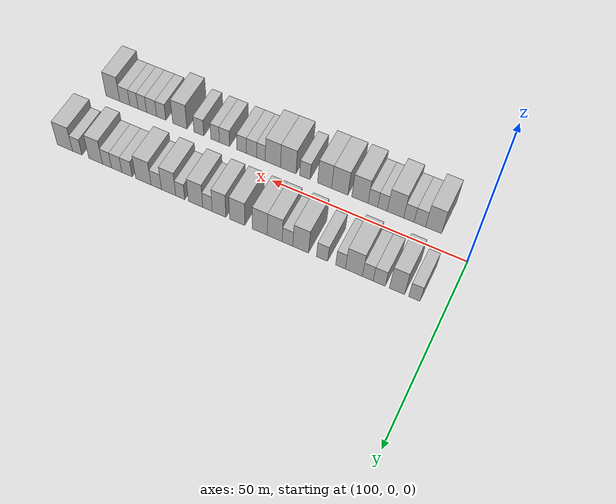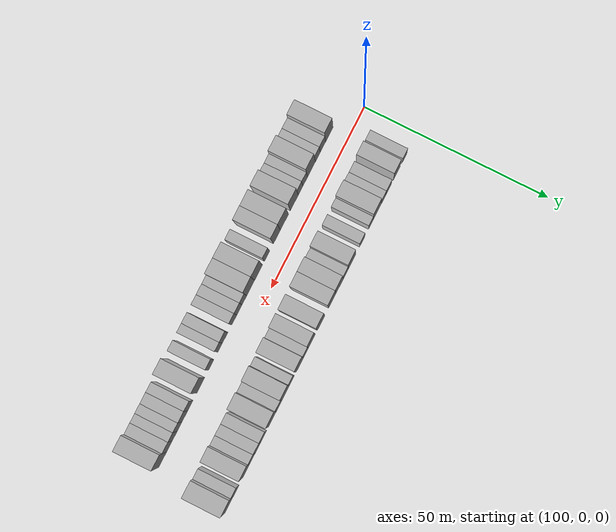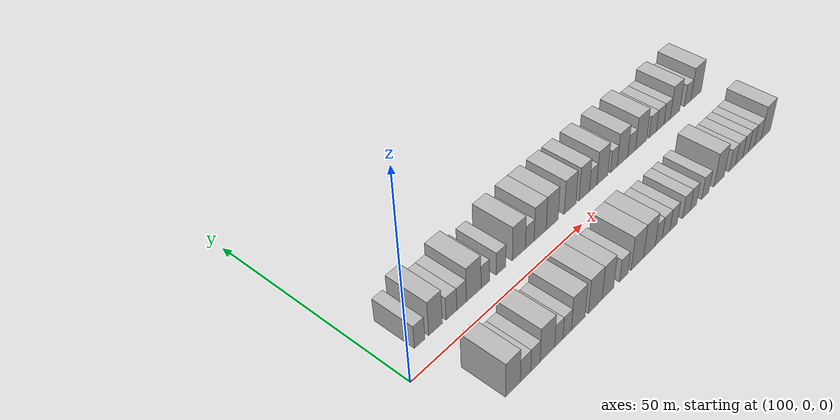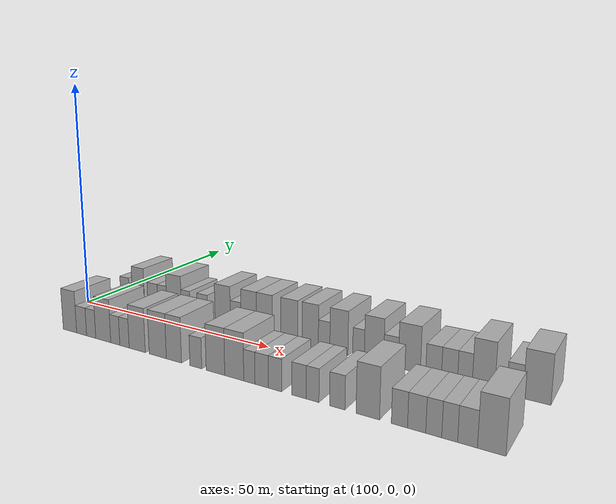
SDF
<sdf version="1.6">
 <world name="default">
  <model name="building_26">
   <static>1</static>
   <pose>107.2216 9.5000 0 0.000000 0.000000 1.570796</pose>
   <link name="link">
    <pose>0 0 3.00 0 0 0</pose>
    <collision name="collision"><geometry><box><size>10.0000 2.7436 6.0000</size></box></geometry></collision>
    <visual name="visual">
     <cast_shadows>0</cast_shadows>
     <geometry><box><size>10.0000 2.7436 6.0000</size></box></geometry>
     <material>
      <script>
       <uri>model://HANNAS_wall/materials/scripts</uri>
       <uri>model://HANNAS_wall/materials/textures</uri>
       <name>vrc/HANNAS_wall</name>
      </script>
     </material>
    </visual>
   </link>
  </model>
  <model name="building_27">
   <static>1</static>
   <pose>111.4386 9.5000 0 0.000000 0.000000 1.570796</pose>
   <link name="link">
    <pose>0 0 4.50 0 0 0</pose>
    <collision name="collision"><geometry><box><size>10.0000 3.6904 9.0000</size></box></geometry></collision>
    <visual name="visual">
     <cast_shadows>0</cast_shadows>
     <geometry><box><size>10.0000 3.6904 9.0000</size></box></geometry>
     <material>
      <script>
       <uri>model://HANNAS_wall/materials/scripts</uri>
       <uri>model://HANNAS_wall/materials/textures</uri>
       <name>vrc/HANNAS_wall</name>
      </script>
     </material>
    </visual>
   </link>
  </model>
  <model name="building_28">
   <static>1</static>
   <pose>115.7671 9.5000 0 0.000000 0.000000 1.570796</pose>
   <link name="link">
    <pose>0 0 3.00 0 0 0</pose>
    <collision name="collision"><geometry><box><size>10.0000 2.9667 6.0000</size></box></geometry></collision>
    <visual name="visual">
     <cast_shadows>0</cast_shadows>
     <geometry><box><size>10.0000 2.9667 6.0000</size></box></geometry>
     <material>
      <script>
       <uri>model://HANNAS_wall/materials/scripts</uri>
       <uri>model://HANNAS_wall/materials/textures</uri>
       <name>vrc/HANNAS_wall</name>
      </script>
     </material>
    </visual>
   </link>
  </model>
  <model name="building_29">
   <static>1</static>
   <pose>118.5876 9.5000 0 0.000000 0.000000 1.570796</pose>
   <link name="link">
    <pose>0 0 3.00 0 0 0</pose>
    <collision name="collision"><geometry><box><size>10.0000 2.6743 6.0000</size></box></geometry></collision>
    <visual name="visual">
     <cast_shadows>0</cast_shadows>
     <geometry><box><size>10.0000 2.6743 6.0000</size></box></geometry>
     <material>
      <script>
       <uri>model://HANNAS_wall/materials/scripts</uri>
       <uri>model://HANNAS_wall/materials/textures</uri>
       <name>vrc/HANNAS_wall</name>
      </script>
     </material>
    </visual>
   </link>
  </model>
  <model name="building_30">
   <static>1</static>
   <pose>122.0365 9.5000 0 0.000000 0.000000 1.570796</pose>
   <link name="link">
    <pose>0 0 4.50 0 0 0</pose>
    <collision name="collision"><geometry><box><size>10.0000 4.2235 9.0000</size></box></geometry></collision>
    <visual name="visual">
     <cast_shadows>0</cast_shadows>
     <geometry><box><size>10.0000 4.2235 9.0000</size></box></geometry>
     <material>
      <script>
       <uri>model://HANNAS_wall/materials/scripts</uri>
       <uri>model://HANNAS_wall/materials/textures</uri>
       <name>vrc/HANNAS_wall</name>
      </script>
     </material>
    </visual>
   </link>
  </model>
  <model name="building_31">
   <static>1</static>
   <pose>125.3655 9.5000 0 0.000000 0.000000 1.570796</pose>
   <link name="link">
    <pose>0 0 3.00 0 0 0</pose>
    <collision name="collision"><geometry><box><size>10.0000 2.4346 6.0000</size></box></geometry></collision>
    <visual name="visual">
     <cast_shadows>0</cast_shadows>
     <geometry><box><size>10.0000 2.4346 6.0000</size></box></geometry>
     <material>
      <script>
       <uri>model://HANNAS_wall/materials/scripts</uri>
       <uri>model://HANNAS_wall/materials/textures</uri>
       <name>vrc/HANNAS_wall</name>
      </script>
     </material>
    </visual>
   </link>
  </model>
  <model name="building_32">
   <static>1</static>
   <pose>130.0093 9.5000 0 0.000000 0.000000 1.570796</pose>
   <link name="link">
    <pose>0 0 3.00 0 0 0</pose>
    <collision name="collision"><geometry><box><size>10.0000 2.8530 6.0000</size></box></geometry></collision>
    <visual name="visual">
     <cast_shadows>0</cast_shadows>
     <geometry><box><size>10.0000 2.8530 6.0000</size></box></geometry>
     <material>
      <script>
       <uri>model://HANNAS_wall/materials/scripts</uri>
       <uri>model://HANNAS_wall/materials/textures</uri>
       <name>vrc/HANNAS_wall</name>
      </script>
     </material>
    </visual>
   </link>
  </model>
  <model name="building_33">
   <static>1</static>
   <pose>135.4613 9.5000 0 0.000000 0.000000 1.570796</pose>
   <link name="link">
    <pose>0 0 4.50 0 0 0</pose>
    <collision name="collision"><geometry><box><size>10.0000 4.0511 9.0000</size></box></geometry></collision>
    <visual name="visual">
     <cast_shadows>0</cast_shadows>
     <geometry><box><size>10.0000 4.0511 9.0000</size></box></geometry>
     <material>
      <script>
       <uri>model://HANNAS_wall/materials/scripts</uri>
       <uri>model://HANNAS_wall/materials/textures</uri>
       <name>vrc/HANNAS_wall</name>
      </script>
     </material>
    </visual>
   </link>
  </model>
  <model name="building_34">
   <static>1</static>
   <pose>138.8595 9.5000 0 0.000000 0.000000 1.570796</pose>
   <link name="link">
    <pose>0 0 3.00 0 0 0</pose>
    <collision name="collision"><geometry><box><size>10.0000 2.7453 6.0000</size></box></geometry></collision>
    <visual name="visual">
     <cast_shadows>0</cast_shadows>
     <geometry><box><size>10.0000 2.7453 6.0000</size></box></geometry>
     <material>
      <script>
       <uri>model://HANNAS_wall/materials/scripts</uri>
       <uri>model://HANNAS_wall/materials/textures</uri>
       <name>vrc/HANNAS_wall</name>
      </script>
     </material>
    </visual>
   </link>
  </model>
  <model name="building_35">
   <static>1</static>
   <pose>142.1615 9.5000 0 0.000000 0.000000 1.570796</pose>
   <link name="link">
    <pose>0 0 4.50 0 0 0</pose>
    <collision name="collision"><geometry><box><size>10.0000 3.8588 9.0000</size></box></geometry></collision>
    <visual name="visual">
     <cast_shadows>0</cast_shadows>
     <geometry><box><size>10.0000 3.8588 9.0000</size></box></geometry>
     <material>
      <script>
       <uri>model://HANNAS_wall/materials/scripts</uri>
       <uri>model://HANNAS_wall/materials/textures</uri>
       <name>vrc/HANNAS_wall</name>
      </script>
     </material>
    </visual>
   </link>
  </model>
  <model name="building_36">
   <static>1</static>
   <pose>146.0505 9.5000 0 0.000000 0.000000 1.570796</pose>
   <link name="link">
    <pose>0 0 4.50 0 0 0</pose>
    <collision name="collision"><geometry><box><size>10.0000 3.9191 9.0000</size></box></geometry></collision>
    <visual name="visual">
     <cast_shadows>0</cast_shadows>
     <geometry><box><size>10.0000 3.9191 9.0000</size></box></geometry>
     <material>
      <script>
       <uri>model://HANNAS_wall/materials/scripts</uri>
       <uri>model://HANNAS_wall/materials/textures</uri>
       <name>vrc/HANNAS_wall</name>
      </script>
     </material>
    </visual>
   </link>
  </model>
  <model name="building_37">
   <static>1</static>
   <pose>152.0187 9.5000 0 0.000000 0.000000 1.570796</pose>
   <link name="link">
    <pose>0 0 4.50 0 0 0</pose>
    <collision name="collision"><geometry><box><size>10.0000 4.0175 9.0000</size></box></geometry></collision>
    <visual name="visual">
     <cast_shadows>0</cast_shadows>
     <geometry><box><size>10.0000 4.0175 9.0000</size></box></geometry>
     <material>
      <script>
       <uri>model://HANNAS_wall/materials/scripts</uri>
       <uri>model://HANNAS_wall/materials/textures</uri>
       <name>vrc/HANNAS_wall</name>
      </script>
     </material>
    </visual>
   </link>
  </model>
  <model name="building_38">
   <static>1</static>
   <pose>156.8604 9.5000 0 0.000000 0.000000 1.570796</pose>
   <link name="link">
    <pose>0 0 4.50 0 0 0</pose>
    <collision name="collision"><geometry><box><size>10.0000 3.6658 9.0000</size></box></geometry></collision>
    <visual name="visual">
     <cast_shadows>0</cast_shadows>
     <geometry><box><size>10.0000 3.6658 9.0000</size></box></geometry>
     <material>
      <script>
       <uri>model://HANNAS_wall/materials/scripts</uri>
       <uri>model://HANNAS_wall/materials/textures</uri>
       <name>vrc/HANNAS_wall</name>
      </script>
     </material>
    </visual>
   </link>
  </model>
  <model name="building_39">
   <static>1</static>
   <pose>159.9684 9.5000 0 0.000000 0.000000 1.570796</pose>
   <link name="link">
    <pose>0 0 3.00 0 0 0</pose>
    <collision name="collision"><geometry><box><size>10.0000 2.5502 6.0000</size></box></geometry></collision>
    <visual name="visual">
     <cast_shadows>0</cast_shadows>
     <geometry><box><size>10.0000 2.5502 6.0000</size></box></geometry>
     <material>
      <script>
       <uri>model://HANNAS_wall/materials/scripts</uri>
       <uri>model://HANNAS_wall/materials/textures</uri>
       <name>vrc/HANNAS_wall</name>
      </script>
     </material>
    </visual>
   </link>
  </model>
  <model name="building_40">
   <static>1</static>
   <pose>163.2046 9.5000 0 0.000000 0.000000 1.570796</pose>
   <link name="link">
    <pose>0 0 4.50 0 0 0</pose>
    <collision name="collision"><geometry><box><size>10.0000 3.9221 9.0000</size></box></geometry></collision>
    <visual name="visual">
     <cast_shadows>0</cast_shadows>
     <geometry><box><size>10.0000 3.9221 9.0000</size></box></geometry>
     <material>
      <script>
       <uri>model://HANNAS_wall/materials/scripts</uri>
       <uri>model://HANNAS_wall/materials/textures</uri>
       <name>vrc/HANNAS_wall</name>
      </script>
     </material>
    </visual>
   </link>
  </model>
  <model name="building_41">
   <static>1</static>
   <pose>167.3919 9.5000 0 0.000000 0.000000 1.570796</pose>
   <link name="link">
    <pose>0 0 3.00 0 0 0</pose>
    <collision name="collision"><geometry><box><size>10.0000 2.4524 6.0000</size></box></geometry></collision>
    <visual name="visual">
     <cast_shadows>0</cast_shadows>
     <geometry><box><size>10.0000 2.4524 6.0000</size></box></geometry>
     <material>
      <script>
       <uri>model://HANNAS_wall/materials/scripts</uri>
       <uri>model://HANNAS_wall/materials/textures</uri>
       <name>vrc/HANNAS_wall</name>
      </script>
     </material>
    </visual>
   </link>
  </model>
  <model name="building_42">
   <static>1</static>
   <pose>170.6040 9.5000 0 0.000000 0.000000 1.570796</pose>
   <link name="link">
    <pose>0 0 4.50 0 0 0</pose>
    <collision name="collision"><geometry><box><size>10.0000 3.9719 9.0000</size></box></geometry></collision>
    <visual name="visual">
     <cast_shadows>0</cast_shadows>
     <geometry><box><size>10.0000 3.9719 9.0000</size></box></geometry>
     <material>
      <script>
       <uri>model://HANNAS_wall/materials/scripts</uri>
       <uri>model://HANNAS_wall/materials/textures</uri>
       <name>vrc/HANNAS_wall</name>
      </script>
     </material>
    </visual>
   </link>
  </model>
  <model name="building_43">
   <static>1</static>
   <pose>174.0397 9.5000 0 0.000000 0.000000 1.570796</pose>
   <link name="link">
    <pose>0 0 3.00 0 0 0</pose>
    <collision name="collision"><geometry><box><size>10.0000 2.8995 6.0000</size></box></geometry></collision>
    <visual name="visual">
     <cast_shadows>0</cast_shadows>
     <geometry><box><size>10.0000 2.8995 6.0000</size></box></geometry>
     <material>
      <script>
       <uri>model://HANNAS_wall/materials/scripts</uri>
       <uri>model://HANNAS_wall/materials/textures</uri>
       <name>vrc/HANNAS_wall</name>
      </script>
     </material>
    </visual>
   </link>
  </model>
  <model name="building_44">
   <static>1</static>
   <pose>177.6387 9.5000 0 0.000000 0.000000 1.570796</pose>
   <link name="link">
    <pose>0 0 4.50 0 0 0</pose>
    <collision name="collision"><geometry><box><size>10.0000 4.2984 9.0000</size></box></geometry></collision>
    <visual name="visual">
     <cast_shadows>0</cast_shadows>
     <geometry><box><size>10.0000 4.2984 9.0000</size></box></geometry>
     <material>
      <script>
       <uri>model://HANNAS_wall/materials/scripts</uri>
       <uri>model://HANNAS_wall/materials/textures</uri>
       <name>vrc/HANNAS_wall</name>
      </script>
     </material>
    </visual>
   </link>
  </model>
  <model name="building_45">
   <static>1</static>
   <pose>182.2570 9.5000 0 0.000000 0.000000 1.570796</pose>
   <link name="link">
    <pose>0 0 3.00 0 0 0</pose>
    <collision name="collision"><geometry><box><size>10.0000 2.9382 6.0000</size></box></geometry></collision>
    <visual name="visual">
     <cast_shadows>0</cast_shadows>
     <geometry><box><size>10.0000 2.9382 6.0000</size></box></geometry>
     <material>
      <script>
       <uri>model://HANNAS_wall/materials/scripts</uri>
       <uri>model://HANNAS_wall/materials/textures</uri>
       <name>vrc/HANNAS_wall</name>
      </script>
     </material>
    </visual>
   </link>
  </model>
  <model name="building_46">
   <static>1</static>
   <pose>185.1921 9.5000 0 0.000000 0.000000 1.570796</pose>
   <link name="link">
    <pose>0 0 3.00 0 0 0</pose>
    <collision name="collision"><geometry><box><size>10.0000 2.9321 6.0000</size></box></geometry></collision>
    <visual name="visual">
     <cast_shadows>0</cast_shadows>
     <geometry><box><size>10.0000 2.9321 6.0000</size></box></geometry>
     <material>
      <script>
       <uri>model://HANNAS_wall/materials/scripts</uri>
       <uri>model://HANNAS_wall/materials/textures</uri>
       <name>vrc/HANNAS_wall</name>
      </script>
     </material>
    </visual>
   </link>
  </model>
  <model name="building_47">
   <static>1</static>
   <pose>187.9707 9.5000 0 0.000000 0.000000 1.570796</pose>
   <link name="link">
    <pose>0 0 3.00 0 0 0</pose>
    <collision name="collision"><geometry><box><size>10.0000 2.6251 6.0000</size></box></geometry></collision>
    <visual name="visual">
     <cast_shadows>0</cast_shadows>
     <geometry><box><size>10.0000 2.6251 6.0000</size></box></geometry>
     <material>
      <script>
       <uri>model://HANNAS_wall/materials/scripts</uri>
       <uri>model://HANNAS_wall/materials/textures</uri>
       <name>vrc/HANNAS_wall</name>
      </script>
     </material>
    </visual>
   </link>
  </model>
  <model name="building_48">
   <static>1</static>
   <pose>191.2544 9.5000 0 0.000000 0.000000 1.570796</pose>
   <link name="link">
    <pose>0 0 4.50 0 0 0</pose>
    <collision name="collision"><geometry><box><size>10.0000 3.9423 9.0000</size></box></geometry></collision>
    <visual name="visual">
     <cast_shadows>0</cast_shadows>
     <geometry><box><size>10.0000 3.9423 9.0000</size></box></geometry>
     <material>
      <script>
       <uri>model://HANNAS_wall/materials/scripts</uri>
       <uri>model://HANNAS_wall/materials/textures</uri>
       <name>vrc/HANNAS_wall</name>
      </script>
     </material>
    </visual>
   </link>
  </model>
  <model name="building_49">
   <static>1</static>
   <pose>196.5842 9.5000 0 0.000000 0.000000 1.570796</pose>
   <link name="link">
    <pose>0 0 3.00 0 0 0</pose>
    <collision name="collision"><geometry><box><size>10.0000 2.7172 6.0000</size></box></geometry></collision>
    <visual name="visual">
     <cast_shadows>0</cast_shadows>
     <geometry><box><size>10.0000 2.7172 6.0000</size></box></geometry>
     <material>
      <script>
       <uri>model://HANNAS_wall/materials/scripts</uri>
       <uri>model://HANNAS_wall/materials/textures</uri>
       <name>vrc/HANNAS_wall</name>
      </script>
     </material>
    </visual>
   </link>
  </model>
  <model name="building_50">
   <static>1</static>
   <pose>200.1872 9.5000 0 0.000000 0.000000 1.570796</pose>
   <link name="link">
    <pose>0 0 4.50 0 0 0</pose>
    <collision name="collision"><geometry><box><size>10.0000 4.4887 9.0000</size></box></geometry></collision>
    <visual name="visual">
     <cast_shadows>0</cast_shadows>
     <geometry><box><size>10.0000 4.4887 9.0000</size></box></geometry>
     <material>
      <script>
       <uri>model://HANNAS_wall/materials/scripts</uri>
       <uri>model://HANNAS_wall/materials/textures</uri>
       <name>vrc/HANNAS_wall</name>
      </script>
     </material>
    </visual>
   </link>
  </model>
  <model name="building_75">
   <static>1</static>
   <pose>110.0854 -9.5000 0 0.000000 0.000000 1.570796</pose>
   <link name="link">
    <pose>0 0 4.50 0 0 0</pose>
    <collision name="collision"><geometry><box><size>10.0000 4.0058 9.0000</size></box></geometry></collision>
    <visual name="visual">
     <cast_shadows>0</cast_shadows>
     <geometry><box><size>10.0000 4.0058 9.0000</size></box></geometry>
     <material>
      <script>
       <uri>model://HANNAS_wall/materials/scripts</uri>
       <uri>model://HANNAS_wall/materials/textures</uri>
       <name>vrc/HANNAS_wall</name>
      </script>
     </material>
    </visual>
   </link>
  </model>
  <model name="building_76">
   <static>1</static>
   <pose>113.5372 -9.5000 0 0.000000 0.000000 1.570796</pose>
   <link name="link">
    <pose>0 0 3.00 0 0 0</pose>
    <collision name="collision"><geometry><box><size>10.0000 2.8978 6.0000</size></box></geometry></collision>
    <visual name="visual">
     <cast_shadows>0</cast_shadows>
     <geometry><box><size>10.0000 2.8978 6.0000</size></box></geometry>
     <material>
      <script>
       <uri>model://HANNAS_wall/materials/scripts</uri>
       <uri>model://HANNAS_wall/materials/textures</uri>
       <name>vrc/HANNAS_wall</name>
      </script>
     </material>
    </visual>
   </link>
  </model>
  <model name="building_77">
   <static>1</static>
   <pose>116.3038 -9.5000 0 0.000000 0.000000 1.570796</pose>
   <link name="link">
    <pose>0 0 3.00 0 0 0</pose>
    <collision name="collision"><geometry><box><size>10.0000 2.6353 6.0000</size></box></geometry></collision>
    <visual name="visual">
     <cast_shadows>0</cast_shadows>
     <geometry><box><size>10.0000 2.6353 6.0000</size></box></geometry>
     <material>
      <script>
       <uri>model://HANNAS_wall/materials/scripts</uri>
       <uri>model://HANNAS_wall/materials/textures</uri>
       <name>vrc/HANNAS_wall</name>
      </script>
     </material>
    </visual>
   </link>
  </model>
  <model name="building_78">
   <static>1</static>
   <pose>119.7230 -9.5000 0 0.000000 0.000000 1.570796</pose>
   <link name="link">
    <pose>0 0 4.50 0 0 0</pose>
    <collision name="collision"><geometry><box><size>10.0000 4.2032 9.0000</size></box></geometry></collision>
    <visual name="visual">
     <cast_shadows>0</cast_shadows>
     <geometry><box><size>10.0000 4.2032 9.0000</size></box></geometry>
     <material>
      <script>
       <uri>model://HANNAS_wall/materials/scripts</uri>
       <uri>model://HANNAS_wall/materials/textures</uri>
       <name>vrc/HANNAS_wall</name>
      </script>
     </material>
    </visual>
   </link>
  </model>
  <model name="building_79">
   <static>1</static>
   <pose>123.0605 -9.5000 0 0.000000 0.000000 1.570796</pose>
   <link name="link">
    <pose>0 0 3.00 0 0 0</pose>
    <collision name="collision"><geometry><box><size>10.0000 2.4719 6.0000</size></box></geometry></collision>
    <visual name="visual">
     <cast_shadows>0</cast_shadows>
     <geometry><box><size>10.0000 2.4719 6.0000</size></box></geometry>
     <material>
      <script>
       <uri>model://HANNAS_wall/materials/scripts</uri>
       <uri>model://HANNAS_wall/materials/textures</uri>
       <name>vrc/HANNAS_wall</name>
      </script>
     </material>
    </visual>
   </link>
  </model>
  <model name="building_80">
   <static>1</static>
   <pose>125.5507 -9.5000 0 0.000000 0.000000 1.570796</pose>
   <link name="link">
    <pose>0 0 3.00 0 0 0</pose>
    <collision name="collision"><geometry><box><size>10.0000 2.5086 6.0000</size></box></geometry></collision>
    <visual name="visual">
     <cast_shadows>0</cast_shadows>
     <geometry><box><size>10.0000 2.5086 6.0000</size></box></geometry>
     <material>
      <script>
       <uri>model://HANNAS_wall/materials/scripts</uri>
       <uri>model://HANNAS_wall/materials/textures</uri>
       <name>vrc/HANNAS_wall</name>
      </script>
     </material>
    </visual>
   </link>
  </model>
  <model name="building_81">
   <static>1</static>
   <pose>128.9156 -9.5000 0 0.000000 0.000000 1.570796</pose>
   <link name="link">
    <pose>0 0 4.50 0 0 0</pose>
    <collision name="collision"><geometry><box><size>10.0000 4.2212 9.0000</size></box></geometry></collision>
    <visual name="visual">
     <cast_shadows>0</cast_shadows>
     <geometry><box><size>10.0000 4.2212 9.0000</size></box></geometry>
     <material>
      <script>
       <uri>model://HANNAS_wall/materials/scripts</uri>
       <uri>model://HANNAS_wall/materials/textures</uri>
       <name>vrc/HANNAS_wall</name>
      </script>
     </material>
    </visual>
   </link>
  </model>
  <model name="building_82">
   <static>1</static>
   <pose>134.1863 -9.5000 0 0.000000 0.000000 1.570796</pose>
   <link name="link">
    <pose>0 0 4.50 0 0 0</pose>
    <collision name="collision"><geometry><box><size>10.0000 4.3202 9.0000</size></box></geometry></collision>
    <visual name="visual">
     <cast_shadows>0</cast_shadows>
     <geometry><box><size>10.0000 4.3202 9.0000</size></box></geometry>
     <material>
      <script>
       <uri>model://HANNAS_wall/materials/scripts</uri>
       <uri>model://HANNAS_wall/materials/textures</uri>
       <name>vrc/HANNAS_wall</name>
      </script>
     </material>
    </visual>
   </link>
  </model>
  <model name="building_83">
   <static>1</static>
   <pose>138.2036 -9.5000 0 0.000000 0.000000 1.570796</pose>
   <link name="link">
    <pose>0 0 4.50 0 0 0</pose>
    <collision name="collision"><geometry><box><size>10.0000 3.7145 9.0000</size></box></geometry></collision>
    <visual name="visual">
     <cast_shadows>0</cast_shadows>
     <geometry><box><size>10.0000 3.7145 9.0000</size></box></geometry>
     <material>
      <script>
       <uri>model://HANNAS_wall/materials/scripts</uri>
       <uri>model://HANNAS_wall/materials/textures</uri>
       <name>vrc/HANNAS_wall</name>
      </script>
     </material>
    </visual>
   </link>
  </model>
  <model name="building_84">
   <static>1</static>
   <pose>143.4549 -9.5000 0 0.000000 0.000000 1.570796</pose>
   <link name="link">
    <pose>0 0 3.00 0 0 0</pose>
    <collision name="collision"><geometry><box><size>10.0000 2.7880 6.0000</size></box></geometry></collision>
    <visual name="visual">
     <cast_shadows>0</cast_shadows>
     <geometry><box><size>10.0000 2.7880 6.0000</size></box></geometry>
     <material>
      <script>
       <uri>model://HANNAS_wall/materials/scripts</uri>
       <uri>model://HANNAS_wall/materials/textures</uri>
       <name>vrc/HANNAS_wall</name>
      </script>
     </material>
    </visual>
   </link>
  </model>
  <model name="building_85">
   <static>1</static>
   <pose>147.9601 -9.5000 0 0.000000 0.000000 1.570796</pose>
   <link name="link">
    <pose>0 0 4.50 0 0 0</pose>
    <collision name="collision"><geometry><box><size>10.0000 4.2223 9.0000</size></box></geometry></collision>
    <visual name="visual">
     <cast_shadows>0</cast_shadows>
     <geometry><box><size>10.0000 4.2223 9.0000</size></box></geometry>
     <material>
      <script>
       <uri>model://HANNAS_wall/materials/scripts</uri>
       <uri>model://HANNAS_wall/materials/textures</uri>
       <name>vrc/HANNAS_wall</name>
      </script>
     </material>
    </visual>
   </link>
  </model>
  <model name="building_86">
   <static>1</static>
   <pose>152.1491 -9.5000 0 0.000000 0.000000 1.570796</pose>
   <link name="link">
    <pose>0 0 4.50 0 0 0</pose>
    <collision name="collision"><geometry><box><size>10.0000 4.1558 9.0000</size></box></geometry></collision>
    <visual name="visual">
     <cast_shadows>0</cast_shadows>
     <geometry><box><size>10.0000 4.1558 9.0000</size></box></geometry>
     <material>
      <script>
       <uri>model://HANNAS_wall/materials/scripts</uri>
       <uri>model://HANNAS_wall/materials/textures</uri>
       <name>vrc/HANNAS_wall</name>
      </script>
     </material>
    </visual>
   </link>
  </model>
  <model name="building_87">
   <static>1</static>
   <pose>155.4285 -9.5000 0 0.000000 0.000000 1.570796</pose>
   <link name="link">
    <pose>0 0 3.00 0 0 0</pose>
    <collision name="collision"><geometry><box><size>10.0000 2.4031 6.0000</size></box></geometry></collision>
    <visual name="visual">
     <cast_shadows>0</cast_shadows>
     <geometry><box><size>10.0000 2.4031 6.0000</size></box></geometry>
     <material>
      <script>
       <uri>model://HANNAS_wall/materials/scripts</uri>
       <uri>model://HANNAS_wall/materials/textures</uri>
       <name>vrc/HANNAS_wall</name>
      </script>
     </material>
    </visual>
   </link>
  </model>
  <model name="building_88">
   <static>1</static>
   <pose>158.0274 -9.5000 0 0.000000 0.000000 1.570796</pose>
   <link name="link">
    <pose>0 0 3.00 0 0 0</pose>
    <collision name="collision"><geometry><box><size>10.0000 2.7946 6.0000</size></box></geometry></collision>
    <visual name="visual">
     <cast_shadows>0</cast_shadows>
     <geometry><box><size>10.0000 2.7946 6.0000</size></box></geometry>
     <material>
      <script>
       <uri>model://HANNAS_wall/materials/scripts</uri>
       <uri>model://HANNAS_wall/materials/textures</uri>
       <name>vrc/HANNAS_wall</name>
      </script>
     </material>
    </visual>
   </link>
  </model>
  <model name="building_89">
   <static>1</static>
   <pose>160.7723 -9.5000 0 0.000000 0.000000 1.570796</pose>
   <link name="link">
    <pose>0 0 3.00 0 0 0</pose>
    <collision name="collision"><geometry><box><size>10.0000 2.6951 6.0000</size></box></geometry></collision>
    <visual name="visual">
     <cast_shadows>0</cast_shadows>
     <geometry><box><size>10.0000 2.6951 6.0000</size></box></geometry>
     <material>
      <script>
       <uri>model://HANNAS_wall/materials/scripts</uri>
       <uri>model://HANNAS_wall/materials/textures</uri>
       <name>vrc/HANNAS_wall</name>
      </script>
     </material>
    </visual>
   </link>
  </model>
  <model name="building_90">
   <static>1</static>
   <pose>165.5600 -9.5000 0 0.000000 0.000000 1.570796</pose>
   <link name="link">
    <pose>0 0 3.00 0 0 0</pose>
    <collision name="collision"><geometry><box><size>10.0000 2.8803 6.0000</size></box></geometry></collision>
    <visual name="visual">
     <cast_shadows>0</cast_shadows>
     <geometry><box><size>10.0000 2.8803 6.0000</size></box></geometry>
     <material>
      <script>
       <uri>model://HANNAS_wall/materials/scripts</uri>
       <uri>model://HANNAS_wall/materials/textures</uri>
       <name>vrc/HANNAS_wall</name>
      </script>
     </material>
    </visual>
   </link>
  </model>
  <model name="building_91">
   <static>1</static>
   <pose>168.2064 -9.5000 0 0.000000 0.000000 1.570796</pose>
   <link name="link">
    <pose>0 0 3.00 0 0 0</pose>
    <collision name="collision"><geometry><box><size>10.0000 2.4126 6.0000</size></box></geometry></collision>
    <visual name="visual">
     <cast_shadows>0</cast_shadows>
     <geometry><box><size>10.0000 2.4126 6.0000</size></box></geometry>
     <material>
      <script>
       <uri>model://HANNAS_wall/materials/scripts</uri>
       <uri>model://HANNAS_wall/materials/textures</uri>
       <name>vrc/HANNAS_wall</name>
      </script>
     </material>
    </visual>
   </link>
  </model>
  <model name="building_92">
   <static>1</static>
   <pose>172.8254 -9.5000 0 0.000000 0.000000 1.570796</pose>
   <link name="link">
    <pose>0 0 3.00 0 0 0</pose>
    <collision name="collision"><geometry><box><size>10.0000 2.8253 6.0000</size></box></geometry></collision>
    <visual name="visual">
     <cast_shadows>0</cast_shadows>
     <geometry><box><size>10.0000 2.8253 6.0000</size></box></geometry>
     <material>
      <script>
       <uri>model://HANNAS_wall/materials/scripts</uri>
       <uri>model://HANNAS_wall/materials/textures</uri>
       <name>vrc/HANNAS_wall</name>
      </script>
     </material>
    </visual>
   </link>
  </model>
  <model name="building_93">
   <static>1</static>
   <pose>178.2932 -9.5000 0 0.000000 0.000000 1.570796</pose>
   <link name="link">
    <pose>0 0 4.50 0 0 0</pose>
    <collision name="collision"><geometry><box><size>10.0000 4.1104 9.0000</size></box></geometry></collision>
    <visual name="visual">
     <cast_shadows>0</cast_shadows>
     <geometry><box><size>10.0000 4.1104 9.0000</size></box></geometry>
     <material>
      <script>
       <uri>model://HANNAS_wall/materials/scripts</uri>
       <uri>model://HANNAS_wall/materials/textures</uri>
       <name>vrc/HANNAS_wall</name>
      </script>
     </material>
    </visual>
   </link>
  </model>
  <model name="building_94">
   <static>1</static>
   <pose>183.6952 -9.5000 0 0.000000 0.000000 1.570796</pose>
   <link name="link">
    <pose>0 0 3.00 0 0 0</pose>
    <collision name="collision"><geometry><box><size>10.0000 2.6935 6.0000</size></box></geometry></collision>
    <visual name="visual">
     <cast_shadows>0</cast_shadows>
     <geometry><box><size>10.0000 2.6935 6.0000</size></box></geometry>
     <material>
      <script>
       <uri>model://HANNAS_wall/materials/scripts</uri>
       <uri>model://HANNAS_wall/materials/textures</uri>
       <name>vrc/HANNAS_wall</name>
      </script>
     </material>
    </visual>
   </link>
  </model>
  <model name="building_95">
   <static>1</static>
   <pose>186.5250 -9.5000 0 0.000000 0.000000 1.570796</pose>
   <link name="link">
    <pose>0 0 3.00 0 0 0</pose>
    <collision name="collision"><geometry><box><size>10.0000 2.9661 6.0000</size></box></geometry></collision>
    <visual name="visual">
     <cast_shadows>0</cast_shadows>
     <geometry><box><size>10.0000 2.9661 6.0000</size></box></geometry>
     <material>
      <script>
       <uri>model://HANNAS_wall/materials/scripts</uri>
       <uri>model://HANNAS_wall/materials/textures</uri>
       <name>vrc/HANNAS_wall</name>
      </script>
     </material>
    </visual>
   </link>
  </model>
  <model name="building_96">
   <static>1</static>
   <pose>189.2684 -9.5000 0 0.000000 0.000000 1.570796</pose>
   <link name="link">
    <pose>0 0 3.00 0 0 0</pose>
    <collision name="collision"><geometry><box><size>10.0000 2.5209 6.0000</size></box></geometry></collision>
    <visual name="visual">
     <cast_shadows>0</cast_shadows>
     <geometry><box><size>10.0000 2.5209 6.0000</size></box></geometry>
     <material>
      <script>
       <uri>model://HANNAS_wall/materials/scripts</uri>
       <uri>model://HANNAS_wall/materials/textures</uri>
       <name>vrc/HANNAS_wall</name>
      </script>
     </material>
    </visual>
   </link>
  </model>
  <model name="building_97">
   <static>1</static>
   <pose>191.7578 -9.5000 0 0.000000 0.000000 1.570796</pose>
   <link name="link">
    <pose>0 0 3.00 0 0 0</pose>
    <collision name="collision"><geometry><box><size>10.0000 2.4579 6.0000</size></box></geometry></collision>
    <visual name="visual">
     <cast_shadows>0</cast_shadows>
     <geometry><box><size>10.0000 2.4579 6.0000</size></box></geometry>
     <material>
      <script>
       <uri>model://HANNAS_wall/materials/scripts</uri>
       <uri>model://HANNAS_wall/materials/textures</uri>
       <name>vrc/HANNAS_wall</name>
      </script>
     </material>
    </visual>
   </link>
  </model>
  <model name="building_98">
   <static>1</static>
   <pose>194.4750 -9.5000 0 0.000000 0.000000 1.570796</pose>
   <link name="link">
    <pose>0 0 3.00 0 0 0</pose>
    <collision name="collision"><geometry><box><size>10.0000 2.9765 6.0000</size></box></geometry></collision>
    <visual name="visual">
     <cast_shadows>0</cast_shadows>
     <geometry><box><size>10.0000 2.9765 6.0000</size></box></geometry>
     <material>
      <script>
       <uri>model://HANNAS_wall/materials/scripts</uri>
       <uri>model://HANNAS_wall/materials/textures</uri>
       <name>vrc/HANNAS_wall</name>
      </script>
     </material>
    </visual>
   </link>
  </model>
  <model name="building_99">
   <static>1</static>
   <pose>198.0362 -9.5000 0 0.000000 0.000000 1.570796</pose>
   <link name="link">
    <pose>0 0 4.50 0 0 0</pose>
    <collision name="collision"><geometry><box><size>10.0000 4.1460 9.0000</size></box></geometry></collision>
    <visual name="visual">
     <cast_shadows>0</cast_shadows>
     <geometry><box><size>10.0000 4.1460 9.0000</size></box></geometry>
     <material>
      <script>
       <uri>model://HANNAS_wall/materials/scripts</uri>
       <uri>model://HANNAS_wall/materials/textures</uri>
       <name>vrc/HANNAS_wall</name>
      </script>
     </material>
    </visual>
   </link>
  </model>
 </world>
</sdf>
